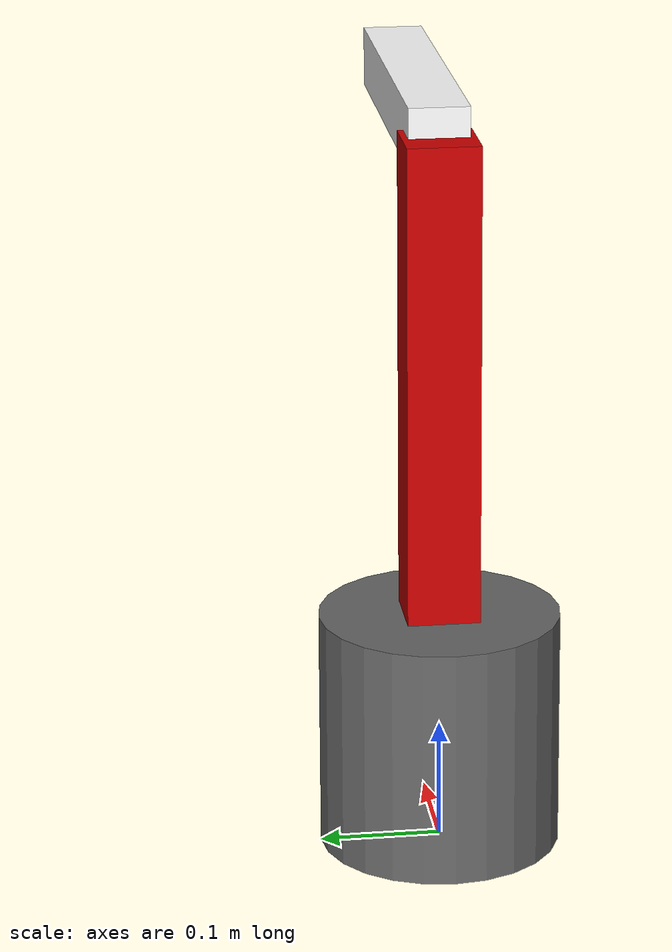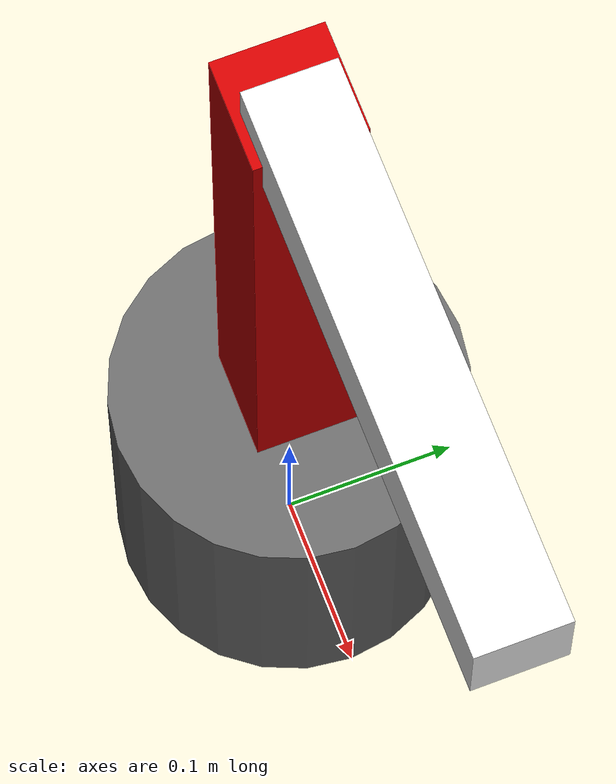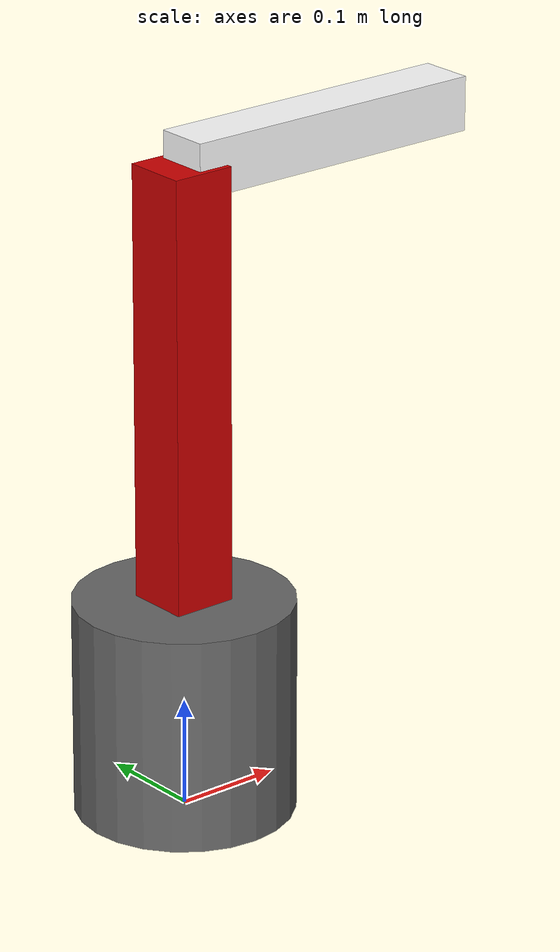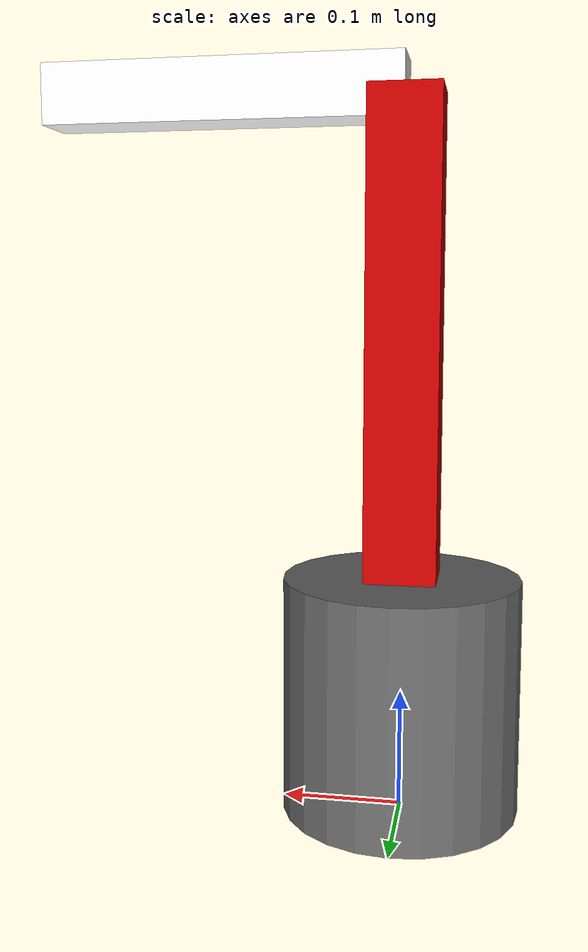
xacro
<?xml version="1.0"?>
<robot xmlns:xacro="http://www.ros.org/wiki/xacro" name="robotic_arm">
  <link name="world"/>

  <!-- 1. ARM BASE LINK -->
  <link name="arm_base">
    <visual>
      <geometry> <cylinder radius="0.1" length="0.2"/> </geometry>
      <origin xyz="0.0 0.0 0.1" rpy="0.0 0.0 0.0"/>
      <material name="grey"><color rgba="0.4 0.4 0.4 1.0"/></material>
    </visual>
    <collision>
      <geometry> <cylinder radius="0.1" length="0.2"/> </geometry>
      <origin xyz="0.0 0.0 0.1" rpy="0.0 0.0 0.0"/>
    </collision>
    <inertial>
      <origin xyz="0.0 0.0 0.1" rpy="0.0 0.0 0.0"/>
      <mass value="5.0"/>
      <inertia ixx="0.0291" ixy="0.0" ixz="0.0" iyy="0.0291" iyz="0.0" izz="0.025"/>
    </inertial>
  </link>

  <joint name="world_to_base_joint" type="fixed">
    <parent link="world"/> <child link="arm_base"/>
    <origin xyz="0.0 0.0 0.0" rpy="0.0 0.0 0.0"/>
  </joint>

  <!-- 2. LINK 1 / LOWER ARM -->
  <link name="link_1">
    <visual>
      <geometry> <box size="0.06 0.06 0.4"/> </geometry>
      <origin xyz="0.0 0.0 0.2" rpy="0.0 0.0 0.0"/>
      <material name="red"><color rgba="0.8 0.0 0.0 1.0"/></material>
    </visual>
    <collision>
      <geometry> <box size="0.06 0.06 0.4"/> </geometry>
      <origin xyz="0.0 0.0 0.2" rpy="0.0 0.0 0.0"/>
    </collision>
    <inertial>
      <origin xyz="0.0 0.0 0.2" rpy="0.0 0.0 0.0"/>
      <mass value="2.0"/>
      <inertia ixx="0.0273" ixy="0.0" ixz="0.0" iyy="0.0273" iyz="0.0" izz="0.0012"/>
    </inertial>
  </link>

  <joint name="base_to_link_1_joint" type="revolute">
    <parent link="arm_base"/> <child link="link_1"/>
    <origin xyz="0.0 0.0 0.2" rpy="0.0 0.0 0.0"/>
    <axis xyz="0.0 0.0 1.0"/>
    <limit lower="-3.1416" upper="3.1416" effort="100.0" velocity="1.0"/>
    <!-- ADDED DYNAMICS - Stiff base swivel rotation -->
    <dynamics damping="5.0" friction="10.0"/>
  </joint>

  <!-- 3. LINK 2 / UPPER ARM -->
  <link name="link_2">
    <visual>
      <geometry> <box size="0.3 0.05 0.05"/> </geometry>
      <origin xyz="0.15 0.0 0.0" rpy="0.0 0.0 0.0"/>
      <material name="white"><color rgba="1.0 1.0 1.0 1.0"/></material>
    </visual>
    <collision>
      <geometry> <box size="0.3 0.05 0.05"/> </geometry>
      <origin xyz="0.15 0.0 0.0" rpy="0.0 0.0 0.0"/>
    </collision>
    <inertial>
      <origin xyz="0.15 0.0 0.0" rpy="0.0 0.0 0.0"/>
      <mass value="1.5"/>
      <inertia ixx="0.0006" ixy="0.0" ixz="0.0" iyy="0.0116" iyz="0.0" izz="0.0116"/>
    </inertial>
  </link>

  <joint name="link_1_to_link_2_joint" type="revolute">
    <parent link="link_1"/> <child link="link_2"/>
    <origin xyz="0.0 0.0 0.4" rpy="0.0 0.0 0.0"/>
    <axis xyz="0.0 1.0 0.0"/>
    <limit lower="-1.5708" upper="1.5708" effort="100.0" velocity="1.0"/>
    <!-- ADDED DYNAMICS - Stiff elbow joint to counter gravity -->
    <dynamics damping="1.0" friction="1.0"/>
  </joint>

  <!-- ROS2 CONTROL HARDWARE INTERFACE SPECIFICATION -->
  <ros2_control name="GazeboSystem" type="system">
    <hardware>
      <plugin>gazebo_ros2_control/GazeboSystem</plugin>
    </hardware>

    <!-- Joint 1: Base Swivel -->
    <joint name="base_to_link_1_joint">
      <command_interface name="position">
        <param name="min">-3.1416</param>
        <param name="max">3.1416</param>
      </command_interface>
      <state_interface name="position"/>
      <state_interface name="velocity"/>
    </joint>

    <!-- Joint 2: Elbow Flex -->
    <joint name="link_1_to_link_2_joint">
      <command_interface name="position">
        <param name="min">-1.5708</param>
        <param name="max">1.5708</param>
      </command_interface>
      <state_interface name="position"/>
      <state_interface name="velocity"/>
    </joint>
  </ros2_control>

  <!-- GAZEBO PLUGINS - Ties the URDF model directly to the ros2_control node -->
  <gazebo>
    <plugin name="gazebo_ros2_control" filename="libgazebo_ros2_control.so">
    <parameters>$(find my_robot_description)/config/arm_controllers.yaml</parameters>
    </plugin>
  </gazebo>

</robot>
